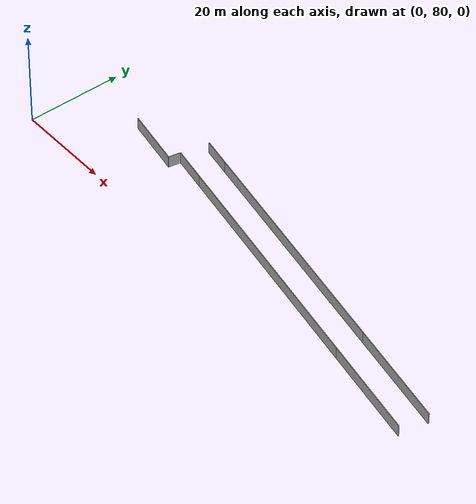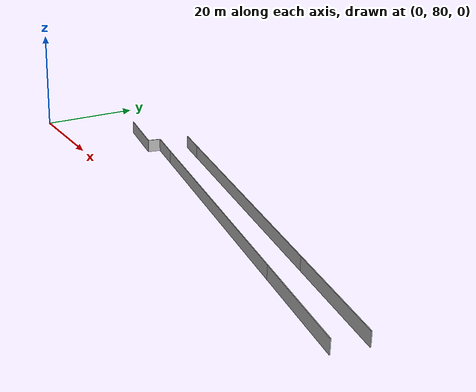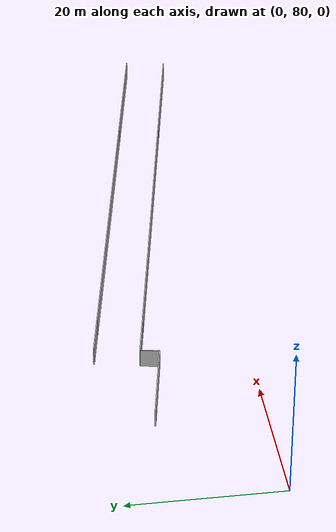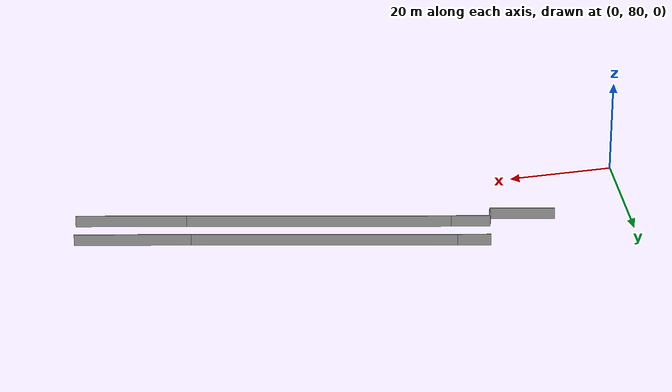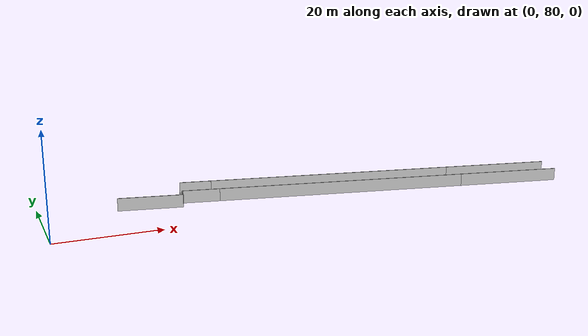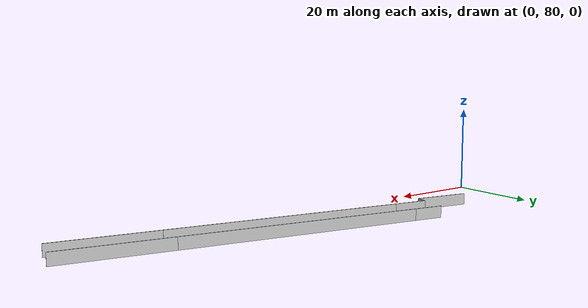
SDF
<?xml version="1.0" ?>
<sdf version="1.6">
  <model name="sps_1001">
    <pose frame="">0 0 0 0 -0 0</pose>
    <static>1</static>
    <self_collide>0</self_collide>
    <allow_auto_disable>0</allow_auto_disable>
    <link name="Wall32">
      <kinematic>0</kinematic>
      <gravity>1</gravity>
      <self_collide>0</self_collide>
      <collision name="collision">
        <geometry>
          <box>
            <size>12.501 0.15 2.5</size>
          </box>
        </geometry>
        <pose frame="">0 0 0 0 -0 0</pose>
      </collision>
      <visual name="visual">
        <geometry>
          <box>
            <size>12.501 0.15 2.5</size>
          </box>
        </geometry>
        <pose frame="">0 0 0 0 -0 0</pose>
        <cast_shadows>1</cast_shadows>
        <transparency>0.0</transparency>
      </visual>
      <pose frame="">20.5447 93.0489 1.25 0 0 -0.181001</pose>
    </link>
    <link name="Wall127">
      <kinematic>0</kinematic>
      <gravity>1</gravity>
      <self_collide>0</self_collide>
      <collision name="collision">
        <geometry>
          <box>
            <size>21.2633 0.15 2.5</size>
          </box>
        </geometry>
        <pose frame="">0 0 0 0 -0 0</pose>
      </collision>
      <visual name="visual">
        <geometry>
          <box>
            <size>21.2633 0.15 2.5</size>
          </box>
        </geometry>
        <pose frame="">0 0 0 0 -0 0</pose>
        <cast_shadows>1</cast_shadows>
        <transparency>0.0</transparency>
      </visual>
      <pose frame="">94.9304 82.109 1.25 0 -0 2.96219</pose>
    </link>
    <link name="Wall128">
      <kinematic>0</kinematic>
      <gravity>1</gravity>
      <self_collide>0</self_collide>
      <collision name="collision">
        <geometry>
          <box>
            <size>50.8156 0.15 2.5</size>
          </box>
        </geometry>
        <pose frame="">0 0 0 0 -0 0</pose>
      </collision>
      <visual name="visual">
        <geometry>
          <box>
            <size>50.8156 0.15 2.5</size>
          </box>
        </geometry>
        <pose frame="">0 0 0 0 -0 0</pose>
        <cast_shadows>1</cast_shadows>
        <transparency>0.0</transparency>
      </visual>
      <pose frame="">59.4694 88.5401 1.25 0 -0 2.96219</pose>
    </link>
    <link name="Wall129">
      <kinematic>0</kinematic>
      <gravity>1</gravity>
      <self_collide>0</self_collide>
      <collision name="collision">
        <geometry>
          <box>
            <size>7.4471 0.15 2.5</size>
          </box>
        </geometry>
        <pose frame="">0 0 0 0 -0 0</pose>
      </collision>
      <visual name="visual">
        <geometry>
          <box>
            <size>7.4471 0.15 2.5</size>
          </box>
        </geometry>
        <pose frame="">0 0 0 0 -0 0</pose>
        <cast_shadows>1</cast_shadows>
        <transparency>0.0</transparency>
      </visual>
      <pose frame="">30.8057 93.7385 1.25 0 -0 2.96219</pose>
    </link>
    <link name="Wall199">
      <kinematic>0</kinematic>
      <gravity>1</gravity>
      <self_collide>0</self_collide>
      <collision name="collision">
        <geometry>
          <box>
            <size>2.51948 0.15 2.5</size>
          </box>
        </geometry>
        <pose frame="">0 0 0 0 -0 0</pose>
      </collision>
      <visual name="visual">
        <geometry>
          <box>
            <size>2.51948 0.15 2.5</size>
          </box>
        </geometry>
        <pose frame="">0 0 0 0 -0 0</pose>
        <cast_shadows>1</cast_shadows>
        <transparency>0.0</transparency>
      </visual>
      <pose frame="">26.9175 93.1633 1.25 0 -0 1.39171</pose>
    </link>
    <link name="Wall544">
      <kinematic>0</kinematic>
      <gravity>1</gravity>
      <self_collide>0</self_collide>
      <collision name="collision">
        <geometry>
          <box>
            <size>6.35803 0.15 2.5</size>
          </box>
        </geometry>
        <pose frame="">0 0 0 0 -0 0</pose>
      </collision>
      <visual name="visual">
        <geometry>
          <box>
            <size>6.35803 0.15 2.5</size>
          </box>
        </geometry>
        <pose frame="">0 0 0 0 -0 0</pose>
        <cast_shadows>1</cast_shadows>
        <transparency>0.0</transparency>
      </visual>
      <pose frame="">31.3415 99.7394 1.25 0 0 -0.179407</pose>
    </link>
    <link name="Wall545">
      <kinematic>0</kinematic>
      <gravity>1</gravity>
      <self_collide>0</self_collide>
      <collision name="collision">
        <geometry>
          <box>
            <size>50.8156 0.15 2.5</size>
          </box>
        </geometry>
        <pose frame="">0 0 0 0 -0 0</pose>
      </collision>
      <visual name="visual">
        <geometry>
          <box>
            <size>50.8156 0.15 2.5</size>
          </box>
        </geometry>
        <pose frame="">0 0 0 0 -0 0</pose>
        <cast_shadows>1</cast_shadows>
        <transparency>0.0</transparency>
      </visual>
      <pose frame="">59.4694 94.6382 1.25 0 0 -0.179407</pose>
    </link>
    <link name="Wall546">
      <kinematic>0</kinematic>
      <gravity>1</gravity>
      <self_collide>0</self_collide>
      <collision name="collision">
        <geometry>
          <box>
            <size>22.3337 0.15 2.5</size>
          </box>
        </geometry>
        <pose frame="">0 0 0 0 -0 0</pose>
      </collision>
      <visual name="visual">
        <geometry>
          <box>
            <size>22.3337 0.15 2.5</size>
          </box>
        </geometry>
        <pose frame="">0 0 0 0 -0 0</pose>
        <cast_shadows>1</cast_shadows>
        <transparency>0.0</transparency>
      </visual>
      <pose frame="">95.4571 88.1116 1.25 0 0 -0.179407</pose>
    </link>
  </model>
</sdf>
